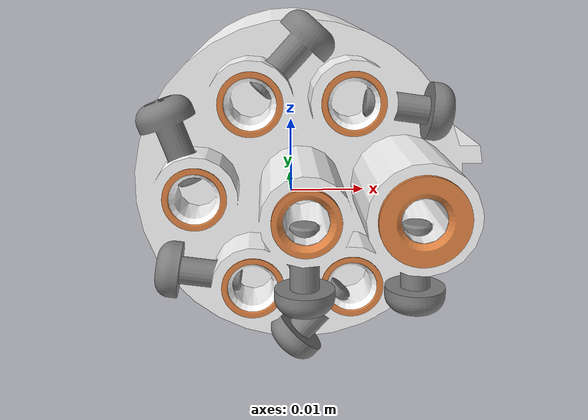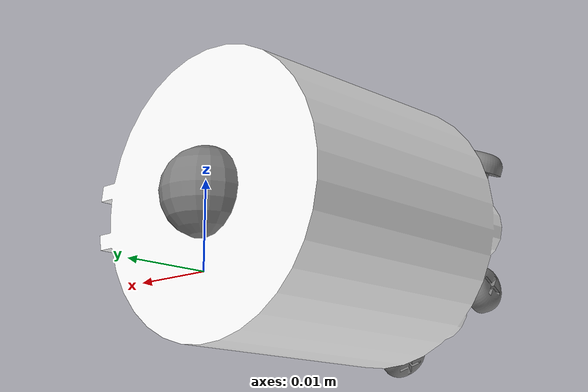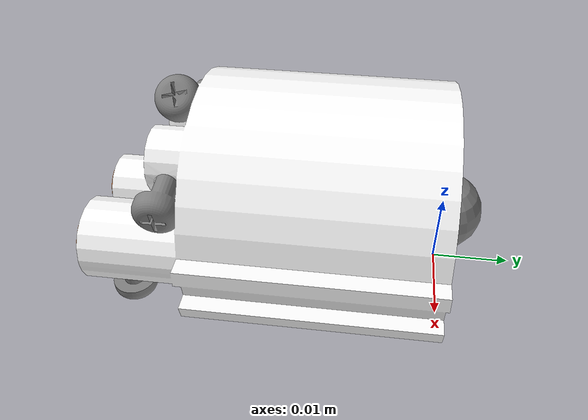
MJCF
<mujoco model="Assem_connector">
  <default>
    <default class="robot">
      <default class="motor">
        <joint />
        <motor />
      </default>
      <default class="visual">
        <geom material="visualgeom" contype="0" conaffinity="0" group="2" />
      </default>
      <default class="collision">
        <geom condim="3" contype="0" conaffinity="1" priority="1" group="3" solref="0.005 1" solimp="0.99 0.999 1e-05" friction="1 0.01 0.01" />
      </default>
    </default>
  </default>

  <compiler angle="radian" />

  <asset>
    <material name="grey" rgba="0.5 0.5 0.5 1" />
    <material name="white" rgba="1 1 1 1" />
    <material name="copper" rgba="0.87 0.51 0.26 1.0" />
    <mesh name="base_link.STL" file="meshes/base_link.STL" />
    <mesh name="head_low_Link.STL" file="meshes/head_low_Link.STL" />
    <mesh name="head_hight_Link.STL" file="meshes/head_hight_Link.STL" />
    <mesh name="screw_1_Link.STL" file="meshes/screw_1_Link.STL" />
    <mesh name="screw_2_Link.STL" file="meshes/screw_2_Link.STL" />
    <mesh name="screw_3_Link.STL" file="meshes/screw_3_Link.STL" />
    <mesh name="screw_4_Link.STL" file="meshes/screw_4_Link.STL" />
    <mesh name="screw_5_Link.STL" file="meshes/screw_5_Link.STL" />
    <mesh name="screw_6_Link.STL" file="meshes/screw_6_Link.STL" />
    <mesh name="screw_7_Link.STL" file="meshes/screw_7_Link.STL" />
  </asset>

  <worldbody>
    <body name="base_link" pos="0.00000000 0.00000000 0.00862140" quat="1 0 0 0" childclass="robot">
      <geom name="base_link_collision" pos="0 0 0" quat="1.0 0.0 0.0 0.0" type="mesh" mesh="base_link.STL" class="collision" />
      <geom name="base_link_visual" pos="0 0 0" quat="1.0 0.0 0.0 0.0" material="white" type="mesh" mesh="base_link.STL" class="visual" />
      <body name="head_low_Link" pos="0 -0.0301 0" quat="0.7071067811865462 0.7071067811865488 0.0 0.0">
        <inertial pos="-0.00200000000000001 1.20549704056784E-16 0.00494863737486097" quat="1.0 0.0 0.0 0.0" mass="4.70715299262856E-06" diaginertia="1.76518018923944e-11 1.76518018923944e-11 3.52957777551172e-11" />
        <geom name="head_low_Link_collision" pos="0 0 0" quat="1.0 0.0 0.0 0.0" type="mesh" mesh="head_low_Link.STL" class="collision" />
        <geom name="head_low_Link_visual" pos="0 0 0" quat="1.0 0.0 0.0 0.0" material="copper" type="mesh" mesh="head_low_Link.STL" class="visual" />
      </body>
      <body name="head_hight_Link" pos="0 -0.0301 0" quat="0.7071067811865462 0.7071067811865488 0.0 0.0">
        <inertial pos="0.00735955056179803 1.28243143167084E-36 0.0126373595505618" quat="1.0 0.0 0.0 0.0" mass="2.33001455141244E-05" diaginertia="1.12192610585733e-10 1.12192610585733e-10 2.2342614253249e-10" />
        <geom name="head_hight_Link_collision" pos="0 0 0" quat="1.0 0.0 0.0 0.0" type="mesh" mesh="head_hight_Link.STL" class="collision" />
        <geom name="head_hight_Link_visual" pos="0 0 0" quat="1.0 0.0 0.0 0.0" material="copper" type="mesh" mesh="head_hight_Link.STL" class="visual" />
      </body>
      <body name="screw_1_Link" pos="0.01 -0.039 -0.0011996" quat="0.18025562481866086 0.0 0.0 -0.9836197993743488">
        <joint name="screw_1_joint" type="hinge" ref="0.0" class="motor" axis="0 0 1" />
        <inertial pos="-1.0406E-10 -3.4694E-17 -0.0052871" quat="1.0 0.0 0.0 0.0" mass="7.9714E-05" diaginertia="5.2401e-10 5.2401e-10 1.9242e-10" />
        <geom name="screw_1_Link_collision" pos="0 0 0" quat="1.0 0.0 0.0 0.0" type="mesh" mesh="screw_1_Link.STL" class="collision" />
        <geom name="screw_1_Link_visual" pos="0 0 0" quat="1.0 0.0 0.0 0.0" material="grey" type="mesh" mesh="screw_1_Link.STL" class="visual" />
      </body>
      <body name="screw_2_Link" pos="0.0064559 -0.0325 -0.0068776" quat="0.30878926234067466 0.33649816284823186 0.11784135222119504 0.8817775193151315">
        <joint name="screw_2_joint" type="hinge" ref="0.0" class="motor" axis="0 0 1" />
        <inertial pos="-5.8518E-11 2.9509E-11 -0.0091275" quat="1.0 0.0 0.0 0.0" mass="7.9714E-05" diaginertia="5.2401e-10 5.2401e-10 1.9242e-10" />
        <geom name="screw_2_Link_collision" pos="0 0 0" quat="1.0 0.0 0.0 0.0" type="mesh" mesh="screw_2_Link.STL" class="collision" />
        <geom name="screw_2_Link_visual" pos="0 0 0" quat="1.0 0.0 0.0 0.0" material="grey" type="mesh" mesh="screw_2_Link.STL" class="visual" />
      </body>
      <body name="screw_3_Link" pos="-0.0060383 -0.032469 -0.0086214" quat="0.20900875132315455 -0.7160709352934613 0.24302598419680535 -0.6200775181406414">
        <joint name="screw_3_joint" type="hinge" ref="0.0" class="motor" axis="0 0 1" />
        <inertial pos="1.1437E-10 -1.6994E-10 -0.0051248" quat="1.0 0.0 0.0 0.0" mass="7.9714E-05" diaginertia="5.2401e-10 5.2401e-10 1.9242e-10" />
        <geom name="screw_3_Link_collision" pos="0 0 0" quat="1.0 0.0 0.0 0.0" type="mesh" mesh="screw_3_Link.STL" class="collision" />
        <geom name="screw_3_Link_visual" pos="0 0 0" quat="1.0 0.0 0.0 0.0" material="grey" type="mesh" mesh="screw_3_Link.STL" class="visual" />
      </body>
      <body name="screw_4_Link" pos="-0.010728 -0.032499 0.0019994" quat="0.14374315103103252 0.5525115293592573 0.8152173357550389 0.09741463925520014">
        <joint name="screw_4_joint" type="hinge" ref="0.0" class="motor" axis="0 0 1" />
        <inertial pos="3.2302E-11 -3.2713E-10 -0.0043159" quat="1.0 0.0 0.0 0.0" mass="7.9714E-05" diaginertia="5.2401e-10 5.2401e-10 1.9242e-10" />
        <geom name="screw_4_Link_collision" pos="0 0 0" quat="1.0 0.0 0.0 0.0" type="mesh" mesh="screw_4_Link.STL" class="collision" />
        <geom name="screw_4_Link_visual" pos="0 0 0" quat="1.0 0.0 0.0 0.0" material="grey" type="mesh" mesh="screw_4_Link.STL" class="visual" />
      </body>
      <body name="screw_5_Link" pos="-0.0061799 -0.032498 0.0072633" quat="0.28687037027476625 -0.565975891019622 -0.7412107155493775 0.21905103651373892">
        <joint name="screw_5_joint" type="hinge" ref="0.0" class="motor" axis="0 0 1" />
        <inertial pos="-1.0603E-10 3.7974E-11 -0.0086495" quat="1.0 0.0 0.0 0.0" mass="7.9714E-05" diaginertia="5.2401e-10 5.2401e-10 1.9242e-10" />
        <geom name="screw_5_Link_collision" pos="0 0 0" quat="1.0 0.0 0.0 0.0" type="mesh" mesh="screw_5_Link.STL" class="collision" />
        <geom name="screw_5_Link_visual" pos="0 0 0" quat="1.0 0.0 0.0 0.0" material="grey" type="mesh" mesh="screw_5_Link.STL" class="visual" />
      </body>
      <body name="screw_6_Link" pos="0.0061504 -0.0325 0.0086039" quat="0.008306014882358721 -0.6545451629643141 -0.007218067495467884 0.7559428148070624">
        <joint name="screw_6_joint" type="hinge" ref="0.0" class="motor" axis="0 0 1" />
        <inertial pos="1.7065E-10 5.9839E-12 -0.0051173" quat="1.0 0.0 0.0 0.0" mass="7.9714E-05" diaginertia="5.2401e-10 5.2401e-10 1.9242e-10" />
        <geom name="screw_6_Link_collision" pos="0 0 0" quat="1.0 0.0 0.0 0.0" type="mesh" mesh="screw_6_Link.STL" class="collision" />
        <geom name="screw_6_Link_visual" pos="0 0 0" quat="1.0 0.0 0.0 0.0" material="grey" type="mesh" mesh="screw_6_Link.STL" class="visual" />
      </body>
      <body name="screw_7_Link" pos="0 -0.039 -0.00126211282229436" quat="0.8417839447226148 0.0 0.0 -0.5398145889166334">
        <joint name="screw_7_joint" type="hinge" ref="0.0" class="motor" axis="0 0 1" />
        <inertial pos="0 0 0" quat="1.0 0.0 0.0 0.0" mass="7.9714E-05" diaginertia="5.2401e-10 5.2401e-10 1.9242e-10" />
        <geom name="screw_7_Link_collision" pos="0 0 0" quat="1.0 0.0 0.0 0.0" type="mesh" mesh="screw_7_Link.STL" class="collision" />
        <geom name="screw_7_Link_visual" pos="0 0 0" quat="1.0 0.0 0.0 0.0" material="grey" type="mesh" mesh="screw_7_Link.STL" class="visual" />
      </body>
      <site name="base_link_site" pos="0 0 0" quat="1 0 0 0" />
      <camera name="front_camera" mode="track" fovy="90.0" quat="4.329780281177467e-17 4.329780281177466e-17 0.7071067811865475 0.7071067811865476" pos="0.0 2.0 0.5" />
      <camera name="side_camera" mode="track" fovy="90.0" quat="-0.5 -0.4999999999999999 0.5 0.5000000000000001" pos="-2.0 0.0 0.5" />
    </body>
  </worldbody>

  <actuator>
    <motor name="screw_1_joint_ctrl" joint="screw_1_joint" class="motor" />
    <motor name="screw_2_joint_ctrl" joint="screw_2_joint" class="motor" />
    <motor name="screw_3_joint_ctrl" joint="screw_3_joint" class="motor" />
    <motor name="screw_4_joint_ctrl" joint="screw_4_joint" class="motor" />
    <motor name="screw_5_joint_ctrl" joint="screw_5_joint" class="motor" />
    <motor name="screw_6_joint_ctrl" joint="screw_6_joint" class="motor" />
    <motor name="screw_7_joint_ctrl" joint="screw_7_joint" class="motor" />
  </actuator>

  <contact>
    <exclude body1="base_link" body2="head_low_Link" />
    <exclude body1="base_link" body2="head_hight_Link" />
    <exclude body1="base_link" body2="screw_1_Link" />
    <exclude body1="base_link" body2="screw_2_Link" />
    <exclude body1="base_link" body2="screw_3_Link" />
    <exclude body1="base_link" body2="screw_4_Link" />
    <exclude body1="base_link" body2="screw_5_Link" />
    <exclude body1="base_link" body2="screw_6_Link" />
    <exclude body1="base_link" body2="screw_7_Link" />
  </contact>

  <sensor>
    <framepos name="base_link_site_pos" objtype="site" objname="base_link_site" />
    <framequat name="base_link_site_quat" objtype="site" objname="base_link_site" />
    <framelinvel name="base_link_site_linvel" objtype="site" objname="base_link_site" />
    <frameangvel name="base_link_site_angvel" objtype="site" objname="base_link_site" />
    <velocimeter name="base_link_site_vel" site="base_link_site" />
  </sensor>
</mujoco>
